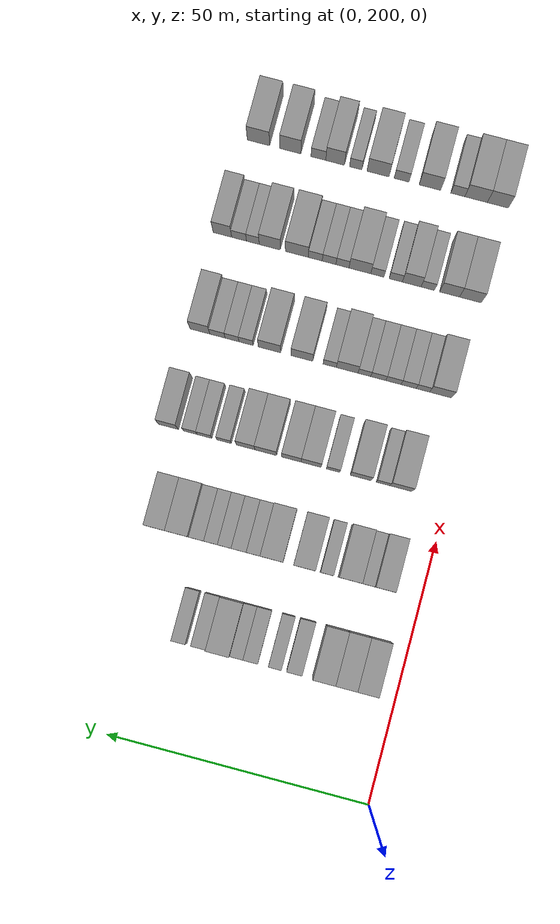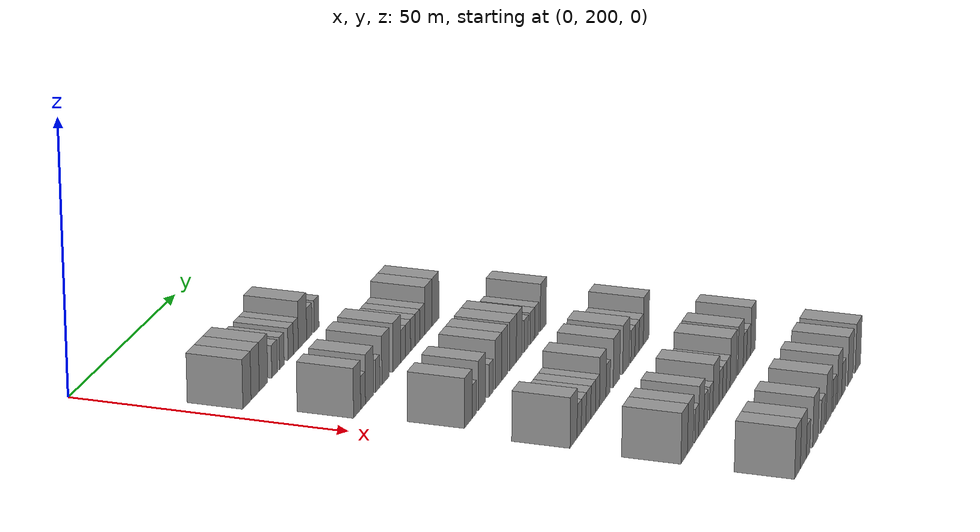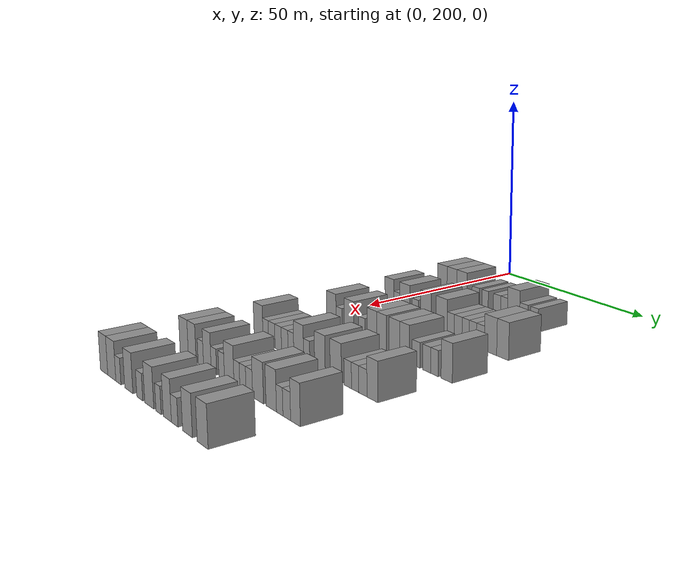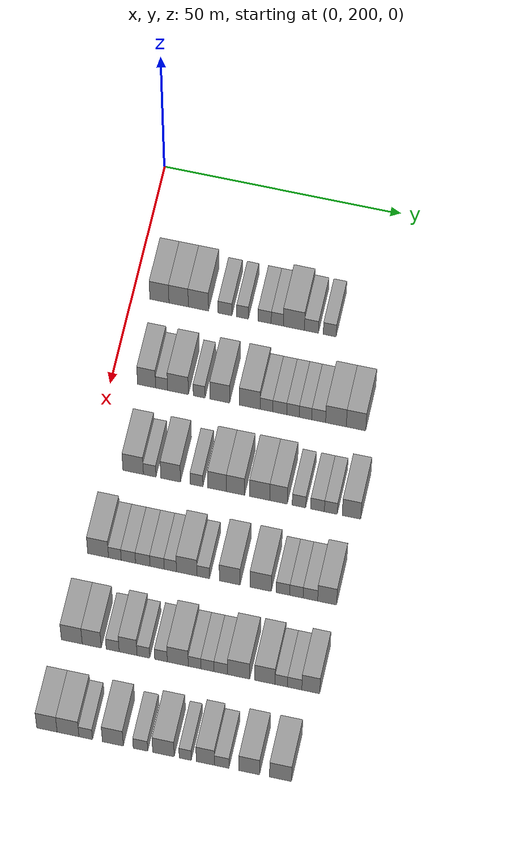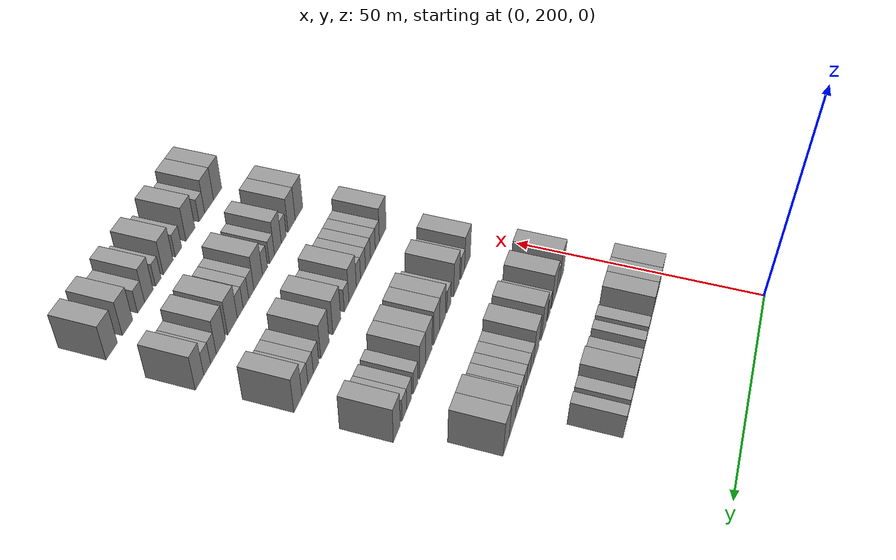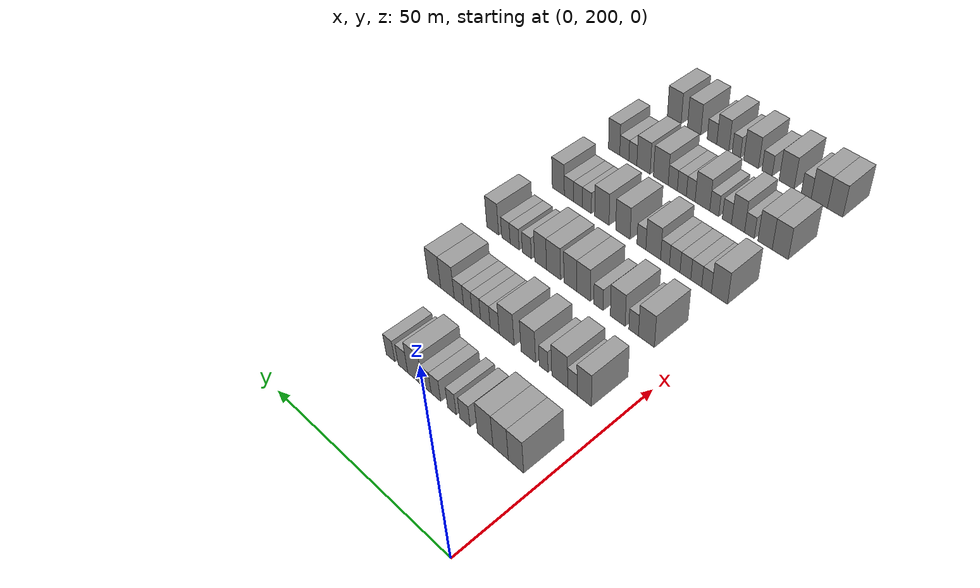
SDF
<sdf version="1.6">
 <world name="default">
  <model name="building_135">
   <static>1</static>
   <pose>25.0000 205.6611 0 0.000000 0.000000 0.000000</pose>
   <link name="link">
    <pose>0 0 4.50 0 0 0</pose>
    <collision name="collision"><geometry><box><size>10.0000 4.0067 9.0000</size></box></geometry></collision>
    <visual name="visual">
     <cast_shadows>0</cast_shadows>
     <geometry><box><size>10.0000 4.0067 9.0000</size></box></geometry>
     <material>
      <script>
       <uri>model://grey_wall/materials/scripts</uri>
       <uri>model://grey_wall/materials/textures</uri>
       <name>vrc/grey_wall</name>
      </script>
     </material>
    </visual>
   </link>
  </model>
  <model name="building_136">
   <static>1</static>
   <pose>25.0000 209.7073 0 0.000000 0.000000 0.000000</pose>
   <link name="link">
    <pose>0 0 4.50 0 0 0</pose>
    <collision name="collision"><geometry><box><size>10.0000 4.0858 9.0000</size></box></geometry></collision>
    <visual name="visual">
     <cast_shadows>0</cast_shadows>
     <geometry><box><size>10.0000 4.0858 9.0000</size></box></geometry>
     <material>
      <script>
       <uri>model://grey_wall/materials/scripts</uri>
       <uri>model://grey_wall/materials/textures</uri>
       <name>vrc/grey_wall</name>
      </script>
     </material>
    </visual>
   </link>
  </model>
  <model name="building_137">
   <static>1</static>
   <pose>25.0000 213.8695 0 0.000000 0.000000 0.000000</pose>
   <link name="link">
    <pose>0 0 4.50 0 0 0</pose>
    <collision name="collision"><geometry><box><size>10.0000 4.2385 9.0000</size></box></geometry></collision>
    <visual name="visual">
     <cast_shadows>0</cast_shadows>
     <geometry><box><size>10.0000 4.2385 9.0000</size></box></geometry>
     <material>
      <script>
       <uri>model://grey_wall/materials/scripts</uri>
       <uri>model://grey_wall/materials/textures</uri>
       <name>vrc/grey_wall</name>
      </script>
     </material>
    </visual>
   </link>
  </model>
  <model name="building_138">
   <static>1</static>
   <pose>25.0000 219.4439 0 0.000000 0.000000 0.000000</pose>
   <link name="link">
    <pose>0 0 3.00 0 0 0</pose>
    <collision name="collision"><geometry><box><size>10.0000 2.9102 6.0000</size></box></geometry></collision>
    <visual name="visual">
     <cast_shadows>0</cast_shadows>
     <geometry><box><size>10.0000 2.9102 6.0000</size></box></geometry>
     <material>
      <script>
       <uri>model://grey_wall/materials/scripts</uri>
       <uri>model://grey_wall/materials/textures</uri>
       <name>vrc/grey_wall</name>
      </script>
     </material>
    </visual>
   </link>
  </model>
  <model name="building_139">
   <static>1</static>
   <pose>25.0000 223.1220 0 0.000000 0.000000 0.000000</pose>
   <link name="link">
    <pose>0 0 3.00 0 0 0</pose>
    <collision name="collision"><geometry><box><size>10.0000 2.4459 6.0000</size></box></geometry></collision>
    <visual name="visual">
     <cast_shadows>0</cast_shadows>
     <geometry><box><size>10.0000 2.4459 6.0000</size></box></geometry>
     <material>
      <script>
       <uri>model://grey_wall/materials/scripts</uri>
       <uri>model://grey_wall/materials/textures</uri>
       <name>vrc/grey_wall</name>
      </script>
     </material>
    </visual>
   </link>
  </model>
  <model name="building_140">
   <static>1</static>
   <pose>25.0000 227.7401 0 0.000000 0.000000 0.000000</pose>
   <link name="link">
    <pose>0 0 3.00 0 0 0</pose>
    <collision name="collision"><geometry><box><size>10.0000 2.7903 6.0000</size></box></geometry></collision>
    <visual name="visual">
     <cast_shadows>0</cast_shadows>
     <geometry><box><size>10.0000 2.7903 6.0000</size></box></geometry>
     <material>
      <script>
       <uri>model://grey_wall/materials/scripts</uri>
       <uri>model://grey_wall/materials/textures</uri>
       <name>vrc/grey_wall</name>
      </script>
     </material>
    </visual>
   </link>
  </model>
  <model name="building_141">
   <static>1</static>
   <pose>25.0000 230.3932 0 0.000000 0.000000 0.000000</pose>
   <link name="link">
    <pose>0 0 3.00 0 0 0</pose>
    <collision name="collision"><geometry><box><size>10.0000 2.5159 6.0000</size></box></geometry></collision>
    <visual name="visual">
     <cast_shadows>0</cast_shadows>
     <geometry><box><size>10.0000 2.5159 6.0000</size></box></geometry>
     <material>
      <script>
       <uri>model://grey_wall/materials/scripts</uri>
       <uri>model://grey_wall/materials/textures</uri>
       <name>vrc/grey_wall</name>
      </script>
     </material>
    </visual>
   </link>
  </model>
  <model name="building_142">
   <static>1</static>
   <pose>25.0000 233.8676 0 0.000000 0.000000 0.000000</pose>
   <link name="link">
    <pose>0 0 4.50 0 0 0</pose>
    <collision name="collision"><geometry><box><size>10.0000 4.4328 9.0000</size></box></geometry></collision>
    <visual name="visual">
     <cast_shadows>0</cast_shadows>
     <geometry><box><size>10.0000 4.4328 9.0000</size></box></geometry>
     <material>
      <script>
       <uri>model://grey_wall/materials/scripts</uri>
       <uri>model://grey_wall/materials/textures</uri>
       <name>vrc/grey_wall</name>
      </script>
     </material>
    </visual>
   </link>
  </model>
  <model name="building_143">
   <static>1</static>
   <pose>25.0000 237.5446 0 0.000000 0.000000 0.000000</pose>
   <link name="link">
    <pose>0 0 3.00 0 0 0</pose>
    <collision name="collision"><geometry><box><size>10.0000 2.9213 6.0000</size></box></geometry></collision>
    <visual name="visual">
     <cast_shadows>0</cast_shadows>
     <geometry><box><size>10.0000 2.9213 6.0000</size></box></geometry>
     <material>
      <script>
       <uri>model://grey_wall/materials/scripts</uri>
       <uri>model://grey_wall/materials/textures</uri>
       <name>vrc/grey_wall</name>
      </script>
     </material>
    </visual>
   </link>
  </model>
  <model name="building_144">
   <static>1</static>
   <pose>25.0000 241.3592 0 0.000000 0.000000 0.000000</pose>
   <link name="link">
    <pose>0 0 3.00 0 0 0</pose>
    <collision name="collision"><geometry><box><size>10.0000 2.7078 6.0000</size></box></geometry></collision>
    <visual name="visual">
     <cast_shadows>0</cast_shadows>
     <geometry><box><size>10.0000 2.7078 6.0000</size></box></geometry>
     <material>
      <script>
       <uri>model://grey_wall/materials/scripts</uri>
       <uri>model://grey_wall/materials/textures</uri>
       <name>vrc/grey_wall</name>
      </script>
     </material>
    </visual>
   </link>
  </model>
  <model name="building_305">
   <static>1</static>
   <pose>44.0000 207.3473 0 0.000000 0.000000 0.000000</pose>
   <link name="link">
    <pose>0 0 4.50 0 0 0</pose>
    <collision name="collision"><geometry><box><size>10.0000 3.7754 9.0000</size></box></geometry></collision>
    <visual name="visual">
     <cast_shadows>0</cast_shadows>
     <geometry><box><size>10.0000 3.7754 9.0000</size></box></geometry>
     <material>
      <script>
       <uri>model://grey_wall/materials/scripts</uri>
       <uri>model://grey_wall/materials/textures</uri>
       <name>vrc/grey_wall</name>
      </script>
     </material>
    </visual>
   </link>
  </model>
  <model name="building_306">
   <static>1</static>
   <pose>44.0000 210.4851 0 0.000000 0.000000 0.000000</pose>
   <link name="link">
    <pose>0 0 3.00 0 0 0</pose>
    <collision name="collision"><geometry><box><size>10.0000 2.5001 6.0000</size></box></geometry></collision>
    <visual name="visual">
     <cast_shadows>0</cast_shadows>
     <geometry><box><size>10.0000 2.5001 6.0000</size></box></geometry>
     <material>
      <script>
       <uri>model://grey_wall/materials/scripts</uri>
       <uri>model://grey_wall/materials/textures</uri>
       <name>vrc/grey_wall</name>
      </script>
     </material>
    </visual>
   </link>
  </model>
  <model name="building_307">
   <static>1</static>
   <pose>44.0000 213.9027 0 0.000000 0.000000 0.000000</pose>
   <link name="link">
    <pose>0 0 4.50 0 0 0</pose>
    <collision name="collision"><geometry><box><size>10.0000 4.3350 9.0000</size></box></geometry></collision>
    <visual name="visual">
     <cast_shadows>0</cast_shadows>
     <geometry><box><size>10.0000 4.3350 9.0000</size></box></geometry>
     <material>
      <script>
       <uri>model://grey_wall/materials/scripts</uri>
       <uri>model://grey_wall/materials/textures</uri>
       <name>vrc/grey_wall</name>
      </script>
     </material>
    </visual>
   </link>
  </model>
  <model name="building_308">
   <static>1</static>
   <pose>44.0000 218.3056 0 0.000000 0.000000 0.000000</pose>
   <link name="link">
    <pose>0 0 3.00 0 0 0</pose>
    <collision name="collision"><geometry><box><size>10.0000 2.4708 6.0000</size></box></geometry></collision>
    <visual name="visual">
     <cast_shadows>0</cast_shadows>
     <geometry><box><size>10.0000 2.4708 6.0000</size></box></geometry>
     <material>
      <script>
       <uri>model://grey_wall/materials/scripts</uri>
       <uri>model://grey_wall/materials/textures</uri>
       <name>vrc/grey_wall</name>
      </script>
     </material>
    </visual>
   </link>
  </model>
  <model name="building_309">
   <static>1</static>
   <pose>44.0000 222.5954 0 0.000000 0.000000 0.000000</pose>
   <link name="link">
    <pose>0 0 4.50 0 0 0</pose>
    <collision name="collision"><geometry><box><size>10.0000 4.1089 9.0000</size></box></geometry></collision>
    <visual name="visual">
     <cast_shadows>0</cast_shadows>
     <geometry><box><size>10.0000 4.1089 9.0000</size></box></geometry>
     <material>
      <script>
       <uri>model://grey_wall/materials/scripts</uri>
       <uri>model://grey_wall/materials/textures</uri>
       <name>vrc/grey_wall</name>
      </script>
     </material>
    </visual>
   </link>
  </model>
  <model name="building_310">
   <static>1</static>
   <pose>44.0000 228.8108 0 0.000000 0.000000 0.000000</pose>
   <link name="link">
    <pose>0 0 4.50 0 0 0</pose>
    <collision name="collision"><geometry><box><size>10.0000 4.3220 9.0000</size></box></geometry></collision>
    <visual name="visual">
     <cast_shadows>0</cast_shadows>
     <geometry><box><size>10.0000 4.3220 9.0000</size></box></geometry>
     <material>
      <script>
       <uri>model://grey_wall/materials/scripts</uri>
       <uri>model://grey_wall/materials/textures</uri>
       <name>vrc/grey_wall</name>
      </script>
     </material>
    </visual>
   </link>
  </model>
  <model name="building_311">
   <static>1</static>
   <pose>44.0000 232.3032 0 0.000000 0.000000 0.000000</pose>
   <link name="link">
    <pose>0 0 3.00 0 0 0</pose>
    <collision name="collision"><geometry><box><size>10.0000 2.6628 6.0000</size></box></geometry></collision>
    <visual name="visual">
     <cast_shadows>0</cast_shadows>
     <geometry><box><size>10.0000 2.6628 6.0000</size></box></geometry>
     <material>
      <script>
       <uri>model://grey_wall/materials/scripts</uri>
       <uri>model://grey_wall/materials/textures</uri>
       <name>vrc/grey_wall</name>
      </script>
     </material>
    </visual>
   </link>
  </model>
  <model name="building_312">
   <static>1</static>
   <pose>44.0000 235.0671 0 0.000000 0.000000 0.000000</pose>
   <link name="link">
    <pose>0 0 3.00 0 0 0</pose>
    <collision name="collision"><geometry><box><size>10.0000 2.8650 6.0000</size></box></geometry></collision>
    <visual name="visual">
     <cast_shadows>0</cast_shadows>
     <geometry><box><size>10.0000 2.8650 6.0000</size></box></geometry>
     <material>
      <script>
       <uri>model://grey_wall/materials/scripts</uri>
       <uri>model://grey_wall/materials/textures</uri>
       <name>vrc/grey_wall</name>
      </script>
     </material>
    </visual>
   </link>
  </model>
  <model name="building_313">
   <static>1</static>
   <pose>44.0000 237.7959 0 0.000000 0.000000 0.000000</pose>
   <link name="link">
    <pose>0 0 3.00 0 0 0</pose>
    <collision name="collision"><geometry><box><size>10.0000 2.5925 6.0000</size></box></geometry></collision>
    <visual name="visual">
     <cast_shadows>0</cast_shadows>
     <geometry><box><size>10.0000 2.5925 6.0000</size></box></geometry>
     <material>
      <script>
       <uri>model://grey_wall/materials/scripts</uri>
       <uri>model://grey_wall/materials/textures</uri>
       <name>vrc/grey_wall</name>
      </script>
     </material>
    </visual>
   </link>
  </model>
  <model name="building_314">
   <static>1</static>
   <pose>44.0000 240.3921 0 0.000000 0.000000 0.000000</pose>
   <link name="link">
    <pose>0 0 3.00 0 0 0</pose>
    <collision name="collision"><geometry><box><size>10.0000 2.5998 6.0000</size></box></geometry></collision>
    <visual name="visual">
     <cast_shadows>0</cast_shadows>
     <geometry><box><size>10.0000 2.5998 6.0000</size></box></geometry>
     <material>
      <script>
       <uri>model://grey_wall/materials/scripts</uri>
       <uri>model://grey_wall/materials/textures</uri>
       <name>vrc/grey_wall</name>
      </script>
     </material>
    </visual>
   </link>
  </model>
  <model name="building_315">
   <static>1</static>
   <pose>44.0000 243.1312 0 0.000000 0.000000 0.000000</pose>
   <link name="link">
    <pose>0 0 3.00 0 0 0</pose>
    <collision name="collision"><geometry><box><size>10.0000 2.8784 6.0000</size></box></geometry></collision>
    <visual name="visual">
     <cast_shadows>0</cast_shadows>
     <geometry><box><size>10.0000 2.8784 6.0000</size></box></geometry>
     <material>
      <script>
       <uri>model://grey_wall/materials/scripts</uri>
       <uri>model://grey_wall/materials/textures</uri>
       <name>vrc/grey_wall</name>
      </script>
     </material>
    </visual>
   </link>
  </model>
  <model name="building_316">
   <static>1</static>
   <pose>44.0000 246.7166 0 0.000000 0.000000 0.000000</pose>
   <link name="link">
    <pose>0 0 4.50 0 0 0</pose>
    <collision name="collision"><geometry><box><size>10.0000 4.2925 9.0000</size></box></geometry></collision>
    <visual name="visual">
     <cast_shadows>0</cast_shadows>
     <geometry><box><size>10.0000 4.2925 9.0000</size></box></geometry>
     <material>
      <script>
       <uri>model://grey_wall/materials/scripts</uri>
       <uri>model://grey_wall/materials/textures</uri>
       <name>vrc/grey_wall</name>
      </script>
     </material>
    </visual>
   </link>
  </model>
  <model name="building_317">
   <static>1</static>
   <pose>44.0000 250.8756 0 0.000000 0.000000 0.000000</pose>
   <link name="link">
    <pose>0 0 4.50 0 0 0</pose>
    <collision name="collision"><geometry><box><size>10.0000 4.0255 9.0000</size></box></geometry></collision>
    <visual name="visual">
     <cast_shadows>0</cast_shadows>
     <geometry><box><size>10.0000 4.0255 9.0000</size></box></geometry>
     <material>
      <script>
       <uri>model://grey_wall/materials/scripts</uri>
       <uri>model://grey_wall/materials/textures</uri>
       <name>vrc/grey_wall</name>
      </script>
     </material>
    </visual>
   </link>
  </model>
  <model name="building_482">
   <static>1</static>
   <pose>63.0000 208.9301 0 0.000000 0.000000 0.000000</pose>
   <link name="link">
    <pose>0 0 4.50 0 0 0</pose>
    <collision name="collision"><geometry><box><size>10.0000 4.2468 9.0000</size></box></geometry></collision>
    <visual name="visual">
     <cast_shadows>0</cast_shadows>
     <geometry><box><size>10.0000 4.2468 9.0000</size></box></geometry>
     <material>
      <script>
       <uri>model://grey_wall/materials/scripts</uri>
       <uri>model://grey_wall/materials/textures</uri>
       <name>vrc/grey_wall</name>
      </script>
     </material>
    </visual>
   </link>
  </model>
  <model name="building_483">
   <static>1</static>
   <pose>63.0000 212.3550 0 0.000000 0.000000 0.000000</pose>
   <link name="link">
    <pose>0 0 3.00 0 0 0</pose>
    <collision name="collision"><geometry><box><size>10.0000 2.6031 6.0000</size></box></geometry></collision>
    <visual name="visual">
     <cast_shadows>0</cast_shadows>
     <geometry><box><size>10.0000 2.6031 6.0000</size></box></geometry>
     <material>
      <script>
       <uri>model://grey_wall/materials/scripts</uri>
       <uri>model://grey_wall/materials/textures</uri>
       <name>vrc/grey_wall</name>
      </script>
     </material>
    </visual>
   </link>
  </model>
  <model name="building_484">
   <static>1</static>
   <pose>63.0000 216.6936 0 0.000000 0.000000 0.000000</pose>
   <link name="link">
    <pose>0 0 4.50 0 0 0</pose>
    <collision name="collision"><geometry><box><size>10.0000 4.0740 9.0000</size></box></geometry></collision>
    <visual name="visual">
     <cast_shadows>0</cast_shadows>
     <geometry><box><size>10.0000 4.0740 9.0000</size></box></geometry>
     <material>
      <script>
       <uri>model://grey_wall/materials/scripts</uri>
       <uri>model://grey_wall/materials/textures</uri>
       <name>vrc/grey_wall</name>
      </script>
     </material>
    </visual>
   </link>
  </model>
  <model name="building_485">
   <static>1</static>
   <pose>63.0000 222.0425 0 0.000000 0.000000 0.000000</pose>
   <link name="link">
    <pose>0 0 3.00 0 0 0</pose>
    <collision name="collision"><geometry><box><size>10.0000 2.6239 6.0000</size></box></geometry></collision>
    <visual name="visual">
     <cast_shadows>0</cast_shadows>
     <geometry><box><size>10.0000 2.6239 6.0000</size></box></geometry>
     <material>
      <script>
       <uri>model://grey_wall/materials/scripts</uri>
       <uri>model://grey_wall/materials/textures</uri>
       <name>vrc/grey_wall</name>
      </script>
     </material>
    </visual>
   </link>
  </model>
  <model name="building_486">
   <static>1</static>
   <pose>63.0000 226.2851 0 0.000000 0.000000 0.000000</pose>
   <link name="link">
    <pose>0 0 4.50 0 0 0</pose>
    <collision name="collision"><geometry><box><size>10.0000 3.8613 9.0000</size></box></geometry></collision>
    <visual name="visual">
     <cast_shadows>0</cast_shadows>
     <geometry><box><size>10.0000 3.8613 9.0000</size></box></geometry>
     <material>
      <script>
       <uri>model://grey_wall/materials/scripts</uri>
       <uri>model://grey_wall/materials/textures</uri>
       <name>vrc/grey_wall</name>
      </script>
     </material>
    </visual>
   </link>
  </model>
  <model name="building_487">
   <static>1</static>
   <pose>63.0000 230.1006 0 0.000000 0.000000 0.000000</pose>
   <link name="link">
    <pose>0 0 4.50 0 0 0</pose>
    <collision name="collision"><geometry><box><size>10.0000 3.7696 9.0000</size></box></geometry></collision>
    <visual name="visual">
     <cast_shadows>0</cast_shadows>
     <geometry><box><size>10.0000 3.7696 9.0000</size></box></geometry>
     <material>
      <script>
       <uri>model://grey_wall/materials/scripts</uri>
       <uri>model://grey_wall/materials/textures</uri>
       <name>vrc/grey_wall</name>
      </script>
     </material>
    </visual>
   </link>
  </model>
  <model name="building_488">
   <static>1</static>
   <pose>63.0000 235.0757 0 0.000000 0.000000 0.000000</pose>
   <link name="link">
    <pose>0 0 4.50 0 0 0</pose>
    <collision name="collision"><geometry><box><size>10.0000 4.1807 9.0000</size></box></geometry></collision>
    <visual name="visual">
     <cast_shadows>0</cast_shadows>
     <geometry><box><size>10.0000 4.1807 9.0000</size></box></geometry>
     <material>
      <script>
       <uri>model://grey_wall/materials/scripts</uri>
       <uri>model://grey_wall/materials/textures</uri>
       <name>vrc/grey_wall</name>
      </script>
     </material>
    </visual>
   </link>
  </model>
  <model name="building_489">
   <static>1</static>
   <pose>63.0000 238.9694 0 0.000000 0.000000 0.000000</pose>
   <link name="link">
    <pose>0 0 4.50 0 0 0</pose>
    <collision name="collision"><geometry><box><size>10.0000 3.6067 9.0000</size></box></geometry></collision>
    <visual name="visual">
     <cast_shadows>0</cast_shadows>
     <geometry><box><size>10.0000 3.6067 9.0000</size></box></geometry>
     <material>
      <script>
       <uri>model://grey_wall/materials/scripts</uri>
       <uri>model://grey_wall/materials/textures</uri>
       <name>vrc/grey_wall</name>
      </script>
     </material>
    </visual>
   </link>
  </model>
  <model name="building_490">
   <static>1</static>
   <pose>63.0000 243.1659 0 0.000000 0.000000 0.000000</pose>
   <link name="link">
    <pose>0 0 3.00 0 0 0</pose>
    <collision name="collision"><geometry><box><size>10.0000 2.7863 6.0000</size></box></geometry></collision>
    <visual name="visual">
     <cast_shadows>0</cast_shadows>
     <geometry><box><size>10.0000 2.7863 6.0000</size></box></geometry>
     <material>
      <script>
       <uri>model://grey_wall/materials/scripts</uri>
       <uri>model://grey_wall/materials/textures</uri>
       <name>vrc/grey_wall</name>
      </script>
     </material>
    </visual>
   </link>
  </model>
  <model name="building_491">
   <static>1</static>
   <pose>63.0000 246.9793 0 0.000000 0.000000 0.000000</pose>
   <link name="link">
    <pose>0 0 3.00 0 0 0</pose>
    <collision name="collision"><geometry><box><size>10.0000 2.8406 6.0000</size></box></geometry></collision>
    <visual name="visual">
     <cast_shadows>0</cast_shadows>
     <geometry><box><size>10.0000 2.8406 6.0000</size></box></geometry>
     <material>
      <script>
       <uri>model://grey_wall/materials/scripts</uri>
       <uri>model://grey_wall/materials/textures</uri>
       <name>vrc/grey_wall</name>
      </script>
     </material>
    </visual>
   </link>
  </model>
  <model name="building_492">
   <static>1</static>
   <pose>63.0000 249.7275 0 0.000000 0.000000 0.000000</pose>
   <link name="link">
    <pose>0 0 3.00 0 0 0</pose>
    <collision name="collision"><geometry><box><size>10.0000 2.6557 6.0000</size></box></geometry></collision>
    <visual name="visual">
     <cast_shadows>0</cast_shadows>
     <geometry><box><size>10.0000 2.6557 6.0000</size></box></geometry>
     <material>
      <script>
       <uri>model://grey_wall/materials/scripts</uri>
       <uri>model://grey_wall/materials/textures</uri>
       <name>vrc/grey_wall</name>
      </script>
     </material>
    </visual>
   </link>
  </model>
  <model name="building_493">
   <static>1</static>
   <pose>63.0000 253.9618 0 0.000000 0.000000 0.000000</pose>
   <link name="link">
    <pose>0 0 4.50 0 0 0</pose>
    <collision name="collision"><geometry><box><size>10.0000 3.8131 9.0000</size></box></geometry></collision>
    <visual name="visual">
     <cast_shadows>0</cast_shadows>
     <geometry><box><size>10.0000 3.8131 9.0000</size></box></geometry>
     <material>
      <script>
       <uri>model://grey_wall/materials/scripts</uri>
       <uri>model://grey_wall/materials/textures</uri>
       <name>vrc/grey_wall</name>
      </script>
     </material>
    </visual>
   </link>
  </model>
  <model name="building_666">
   <static>1</static>
   <pose>82.0000 206.1211 0 0.000000 0.000000 0.000000</pose>
   <link name="link">
    <pose>0 0 4.50 0 0 0</pose>
    <collision name="collision"><geometry><box><size>10.0000 4.2768 9.0000</size></box></geometry></collision>
    <visual name="visual">
     <cast_shadows>0</cast_shadows>
     <geometry><box><size>10.0000 4.2768 9.0000</size></box></geometry>
     <material>
      <script>
       <uri>model://grey_wall/materials/scripts</uri>
       <uri>model://grey_wall/materials/textures</uri>
       <name>vrc/grey_wall</name>
      </script>
     </material>
    </visual>
   </link>
  </model>
  <model name="building_667">
   <static>1</static>
   <pose>82.0000 209.5627 0 0.000000 0.000000 0.000000</pose>
   <link name="link">
    <pose>0 0 3.00 0 0 0</pose>
    <collision name="collision"><geometry><box><size>10.0000 2.6064 6.0000</size></box></geometry></collision>
    <visual name="visual">
     <cast_shadows>0</cast_shadows>
     <geometry><box><size>10.0000 2.6064 6.0000</size></box></geometry>
     <material>
      <script>
       <uri>model://grey_wall/materials/scripts</uri>
       <uri>model://grey_wall/materials/textures</uri>
       <name>vrc/grey_wall</name>
      </script>
     </material>
    </visual>
   </link>
  </model>
  <model name="building_668">
   <static>1</static>
   <pose>82.0000 212.3404 0 0.000000 0.000000 0.000000</pose>
   <link name="link">
    <pose>0 0 3.00 0 0 0</pose>
    <collision name="collision"><geometry><box><size>10.0000 2.9490 6.0000</size></box></geometry></collision>
    <visual name="visual">
     <cast_shadows>0</cast_shadows>
     <geometry><box><size>10.0000 2.9490 6.0000</size></box></geometry>
     <material>
      <script>
       <uri>model://grey_wall/materials/scripts</uri>
       <uri>model://grey_wall/materials/textures</uri>
       <name>vrc/grey_wall</name>
      </script>
     </material>
    </visual>
   </link>
  </model>
  <model name="building_669">
   <static>1</static>
   <pose>82.0000 215.2959 0 0.000000 0.000000 0.000000</pose>
   <link name="link">
    <pose>0 0 3.00 0 0 0</pose>
    <collision name="collision"><geometry><box><size>10.0000 2.9620 6.0000</size></box></geometry></collision>
    <visual name="visual">
     <cast_shadows>0</cast_shadows>
     <geometry><box><size>10.0000 2.9620 6.0000</size></box></geometry>
     <material>
      <script>
       <uri>model://grey_wall/materials/scripts</uri>
       <uri>model://grey_wall/materials/textures</uri>
       <name>vrc/grey_wall</name>
      </script>
     </material>
    </visual>
   </link>
  </model>
  <model name="building_670">
   <static>1</static>
   <pose>82.0000 218.2406 0 0.000000 0.000000 0.000000</pose>
   <link name="link">
    <pose>0 0 3.00 0 0 0</pose>
    <collision name="collision"><geometry><box><size>10.0000 2.9273 6.0000</size></box></geometry></collision>
    <visual name="visual">
     <cast_shadows>0</cast_shadows>
     <geometry><box><size>10.0000 2.9273 6.0000</size></box></geometry>
     <material>
      <script>
       <uri>model://grey_wall/materials/scripts</uri>
       <uri>model://grey_wall/materials/textures</uri>
       <name>vrc/grey_wall</name>
      </script>
     </material>
    </visual>
   </link>
  </model>
  <model name="building_671">
   <static>1</static>
   <pose>82.0000 220.9592 0 0.000000 0.000000 0.000000</pose>
   <link name="link">
    <pose>0 0 3.00 0 0 0</pose>
    <collision name="collision"><geometry><box><size>10.0000 2.5099 6.0000</size></box></geometry></collision>
    <visual name="visual">
     <cast_shadows>0</cast_shadows>
     <geometry><box><size>10.0000 2.5099 6.0000</size></box></geometry>
     <material>
      <script>
       <uri>model://grey_wall/materials/scripts</uri>
       <uri>model://grey_wall/materials/textures</uri>
       <name>vrc/grey_wall</name>
      </script>
     </material>
    </visual>
   </link>
  </model>
  <model name="building_672">
   <static>1</static>
   <pose>82.0000 224.3136 0 0.000000 0.000000 0.000000</pose>
   <link name="link">
    <pose>0 0 4.50 0 0 0</pose>
    <collision name="collision"><geometry><box><size>10.0000 4.1989 9.0000</size></box></geometry></collision>
    <visual name="visual">
     <cast_shadows>0</cast_shadows>
     <geometry><box><size>10.0000 4.1989 9.0000</size></box></geometry>
     <material>
      <script>
       <uri>model://grey_wall/materials/scripts</uri>
       <uri>model://grey_wall/materials/textures</uri>
       <name>vrc/grey_wall</name>
      </script>
     </material>
    </visual>
   </link>
  </model>
  <model name="building_673">
   <static>1</static>
   <pose>82.0000 227.7098 0 0.000000 0.000000 0.000000</pose>
   <link name="link">
    <pose>0 0 3.00 0 0 0</pose>
    <collision name="collision"><geometry><box><size>10.0000 2.5934 6.0000</size></box></geometry></collision>
    <visual name="visual">
     <cast_shadows>0</cast_shadows>
     <geometry><box><size>10.0000 2.5934 6.0000</size></box></geometry>
     <material>
      <script>
       <uri>model://grey_wall/materials/scripts</uri>
       <uri>model://grey_wall/materials/textures</uri>
       <name>vrc/grey_wall</name>
      </script>
     </material>
    </visual>
   </link>
  </model>
  <model name="building_674">
   <static>1</static>
   <pose>82.0000 233.1360 0 0.000000 0.000000 0.000000</pose>
   <link name="link">
    <pose>0 0 4.50 0 0 0</pose>
    <collision name="collision"><geometry><box><size>10.0000 4.2591 9.0000</size></box></geometry></collision>
    <visual name="visual">
     <cast_shadows>0</cast_shadows>
     <geometry><box><size>10.0000 4.2591 9.0000</size></box></geometry>
     <material>
      <script>
       <uri>model://grey_wall/materials/scripts</uri>
       <uri>model://grey_wall/materials/textures</uri>
       <name>vrc/grey_wall</name>
      </script>
     </material>
    </visual>
   </link>
  </model>
  <model name="building_675">
   <static>1</static>
   <pose>82.0000 239.4495 0 0.000000 0.000000 0.000000</pose>
   <link name="link">
    <pose>0 0 4.50 0 0 0</pose>
    <collision name="collision"><geometry><box><size>10.0000 4.3679 9.0000</size></box></geometry></collision>
    <visual name="visual">
     <cast_shadows>0</cast_shadows>
     <geometry><box><size>10.0000 4.3679 9.0000</size></box></geometry>
     <material>
      <script>
       <uri>model://grey_wall/materials/scripts</uri>
       <uri>model://grey_wall/materials/textures</uri>
       <name>vrc/grey_wall</name>
      </script>
     </material>
    </visual>
   </link>
  </model>
  <model name="building_676">
   <static>1</static>
   <pose>82.0000 244.0221 0 0.000000 0.000000 0.000000</pose>
   <link name="link">
    <pose>0 0 3.00 0 0 0</pose>
    <collision name="collision"><geometry><box><size>10.0000 2.7771 6.0000</size></box></geometry></collision>
    <visual name="visual">
     <cast_shadows>0</cast_shadows>
     <geometry><box><size>10.0000 2.7771 6.0000</size></box></geometry>
     <material>
      <script>
       <uri>model://grey_wall/materials/scripts</uri>
       <uri>model://grey_wall/materials/textures</uri>
       <name>vrc/grey_wall</name>
      </script>
     </material>
    </visual>
   </link>
  </model>
  <model name="building_677">
   <static>1</static>
   <pose>82.0000 246.7639 0 0.000000 0.000000 0.000000</pose>
   <link name="link">
    <pose>0 0 3.00 0 0 0</pose>
    <collision name="collision"><geometry><box><size>10.0000 2.7065 6.0000</size></box></geometry></collision>
    <visual name="visual">
     <cast_shadows>0</cast_shadows>
     <geometry><box><size>10.0000 2.7065 6.0000</size></box></geometry>
     <material>
      <script>
       <uri>model://grey_wall/materials/scripts</uri>
       <uri>model://grey_wall/materials/textures</uri>
       <name>vrc/grey_wall</name>
      </script>
     </material>
    </visual>
   </link>
  </model>
  <model name="building_678">
   <static>1</static>
   <pose>82.0000 249.6074 0 0.000000 0.000000 0.000000</pose>
   <link name="link">
    <pose>0 0 3.00 0 0 0</pose>
    <collision name="collision"><geometry><box><size>10.0000 2.9806 6.0000</size></box></geometry></collision>
    <visual name="visual">
     <cast_shadows>0</cast_shadows>
     <geometry><box><size>10.0000 2.9806 6.0000</size></box></geometry>
     <material>
      <script>
       <uri>model://grey_wall/materials/scripts</uri>
       <uri>model://grey_wall/materials/textures</uri>
       <name>vrc/grey_wall</name>
      </script>
     </material>
    </visual>
   </link>
  </model>
  <model name="building_679">
   <static>1</static>
   <pose>82.0000 253.0312 0 0.000000 0.000000 0.000000</pose>
   <link name="link">
    <pose>0 0 4.50 0 0 0</pose>
    <collision name="collision"><geometry><box><size>10.0000 3.8669 9.0000</size></box></geometry></collision>
    <visual name="visual">
     <cast_shadows>0</cast_shadows>
     <geometry><box><size>10.0000 3.8669 9.0000</size></box></geometry>
     <material>
      <script>
       <uri>model://grey_wall/materials/scripts</uri>
       <uri>model://grey_wall/materials/textures</uri>
       <name>vrc/grey_wall</name>
      </script>
     </material>
    </visual>
   </link>
  </model>
  <model name="building_843">
   <static>1</static>
   <pose>101.0000 205.1934 0 0.000000 0.000000 0.000000</pose>
   <link name="link">
    <pose>0 0 4.50 0 0 0</pose>
    <collision name="collision"><geometry><box><size>10.0000 4.2603 9.0000</size></box></geometry></collision>
    <visual name="visual">
     <cast_shadows>0</cast_shadows>
     <geometry><box><size>10.0000 4.2603 9.0000</size></box></geometry>
     <material>
      <script>
       <uri>model://grey_wall/materials/scripts</uri>
       <uri>model://grey_wall/materials/textures</uri>
       <name>vrc/grey_wall</name>
      </script>
     </material>
    </visual>
   </link>
  </model>
  <model name="building_844">
   <static>1</static>
   <pose>101.0000 209.2634 0 0.000000 0.000000 0.000000</pose>
   <link name="link">
    <pose>0 0 4.50 0 0 0</pose>
    <collision name="collision"><geometry><box><size>10.0000 3.8798 9.0000</size></box></geometry></collision>
    <visual name="visual">
     <cast_shadows>0</cast_shadows>
     <geometry><box><size>10.0000 3.8798 9.0000</size></box></geometry>
     <material>
      <script>
       <uri>model://grey_wall/materials/scripts</uri>
       <uri>model://grey_wall/materials/textures</uri>
       <name>vrc/grey_wall</name>
      </script>
     </material>
    </visual>
   </link>
  </model>
  <model name="building_845">
   <static>1</static>
   <pose>101.0000 213.5293 0 0.000000 0.000000 0.000000</pose>
   <link name="link">
    <pose>0 0 3.00 0 0 0</pose>
    <collision name="collision"><geometry><box><size>10.0000 2.6518 6.0000</size></box></geometry></collision>
    <visual name="visual">
     <cast_shadows>0</cast_shadows>
     <geometry><box><size>10.0000 2.6518 6.0000</size></box></geometry>
     <material>
      <script>
       <uri>model://grey_wall/materials/scripts</uri>
       <uri>model://grey_wall/materials/textures</uri>
       <name>vrc/grey_wall</name>
      </script>
     </material>
    </visual>
   </link>
  </model>
  <model name="building_846">
   <static>1</static>
   <pose>101.0000 216.6802 0 0.000000 0.000000 0.000000</pose>
   <link name="link">
    <pose>0 0 4.50 0 0 0</pose>
    <collision name="collision"><geometry><box><size>10.0000 3.6499 9.0000</size></box></geometry></collision>
    <visual name="visual">
     <cast_shadows>0</cast_shadows>
     <geometry><box><size>10.0000 3.6499 9.0000</size></box></geometry>
     <material>
      <script>
       <uri>model://grey_wall/materials/scripts</uri>
       <uri>model://grey_wall/materials/textures</uri>
       <name>vrc/grey_wall</name>
      </script>
     </material>
    </visual>
   </link>
  </model>
  <model name="building_847">
   <static>1</static>
   <pose>101.0000 219.7996 0 0.000000 0.000000 0.000000</pose>
   <link name="link">
    <pose>0 0 3.00 0 0 0</pose>
    <collision name="collision"><geometry><box><size>10.0000 2.5889 6.0000</size></box></geometry></collision>
    <visual name="visual">
     <cast_shadows>0</cast_shadows>
     <geometry><box><size>10.0000 2.5889 6.0000</size></box></geometry>
     <material>
      <script>
       <uri>model://grey_wall/materials/scripts</uri>
       <uri>model://grey_wall/materials/textures</uri>
       <name>vrc/grey_wall</name>
      </script>
     </material>
    </visual>
   </link>
  </model>
  <model name="building_848">
   <static>1</static>
   <pose>101.0000 223.3820 0 0.000000 0.000000 0.000000</pose>
   <link name="link">
    <pose>0 0 3.00 0 0 0</pose>
    <collision name="collision"><geometry><box><size>10.0000 2.5759 6.0000</size></box></geometry></collision>
    <visual name="visual">
     <cast_shadows>0</cast_shadows>
     <geometry><box><size>10.0000 2.5759 6.0000</size></box></geometry>
     <material>
      <script>
       <uri>model://grey_wall/materials/scripts</uri>
       <uri>model://grey_wall/materials/textures</uri>
       <name>vrc/grey_wall</name>
      </script>
     </material>
    </visual>
   </link>
  </model>
  <model name="building_849">
   <static>1</static>
   <pose>101.0000 226.8044 0 0.000000 0.000000 0.000000</pose>
   <link name="link">
    <pose>0 0 4.50 0 0 0</pose>
    <collision name="collision"><geometry><box><size>10.0000 4.2690 9.0000</size></box></geometry></collision>
    <visual name="visual">
     <cast_shadows>0</cast_shadows>
     <geometry><box><size>10.0000 4.2690 9.0000</size></box></geometry>
     <material>
      <script>
       <uri>model://grey_wall/materials/scripts</uri>
       <uri>model://grey_wall/materials/textures</uri>
       <name>vrc/grey_wall</name>
      </script>
     </material>
    </visual>
   </link>
  </model>
  <model name="building_850">
   <static>1</static>
   <pose>101.0000 230.2138 0 0.000000 0.000000 0.000000</pose>
   <link name="link">
    <pose>0 0 3.00 0 0 0</pose>
    <collision name="collision"><geometry><box><size>10.0000 2.5498 6.0000</size></box></geometry></collision>
    <visual name="visual">
     <cast_shadows>0</cast_shadows>
     <geometry><box><size>10.0000 2.5498 6.0000</size></box></geometry>
     <material>
      <script>
       <uri>model://grey_wall/materials/scripts</uri>
       <uri>model://grey_wall/materials/textures</uri>
       <name>vrc/grey_wall</name>
      </script>
     </material>
    </visual>
   </link>
  </model>
  <model name="building_851">
   <static>1</static>
   <pose>101.0000 232.8340 0 0.000000 0.000000 0.000000</pose>
   <link name="link">
    <pose>0 0 3.00 0 0 0</pose>
    <collision name="collision"><geometry><box><size>10.0000 2.6905 6.0000</size></box></geometry></collision>
    <visual name="visual">
     <cast_shadows>0</cast_shadows>
     <geometry><box><size>10.0000 2.6905 6.0000</size></box></geometry>
     <material>
      <script>
       <uri>model://grey_wall/materials/scripts</uri>
       <uri>model://grey_wall/materials/textures</uri>
       <name>vrc/grey_wall</name>
      </script>
     </material>
    </visual>
   </link>
  </model>
  <model name="building_852">
   <static>1</static>
   <pose>101.0000 235.5538 0 0.000000 0.000000 0.000000</pose>
   <link name="link">
    <pose>0 0 3.00 0 0 0</pose>
    <collision name="collision"><geometry><box><size>10.0000 2.7492 6.0000</size></box></geometry></collision>
    <visual name="visual">
     <cast_shadows>0</cast_shadows>
     <geometry><box><size>10.0000 2.7492 6.0000</size></box></geometry>
     <material>
      <script>
       <uri>model://grey_wall/materials/scripts</uri>
       <uri>model://grey_wall/materials/textures</uri>
       <name>vrc/grey_wall</name>
      </script>
     </material>
    </visual>
   </link>
  </model>
  <model name="building_853">
   <static>1</static>
   <pose>101.0000 239.1760 0 0.000000 0.000000 0.000000</pose>
   <link name="link">
    <pose>0 0 4.50 0 0 0</pose>
    <collision name="collision"><geometry><box><size>10.0000 4.4952 9.0000</size></box></geometry></collision>
    <visual name="visual">
     <cast_shadows>0</cast_shadows>
     <geometry><box><size>10.0000 4.4952 9.0000</size></box></geometry>
     <material>
      <script>
       <uri>model://grey_wall/materials/scripts</uri>
       <uri>model://grey_wall/materials/textures</uri>
       <name>vrc/grey_wall</name>
      </script>
     </material>
    </visual>
   </link>
  </model>
  <model name="building_854">
   <static>1</static>
   <pose>101.0000 244.4934 0 0.000000 0.000000 0.000000</pose>
   <link name="link">
    <pose>0 0 4.50 0 0 0</pose>
    <collision name="collision"><geometry><box><size>10.0000 4.1396 9.0000</size></box></geometry></collision>
    <visual name="visual">
     <cast_shadows>0</cast_shadows>
     <geometry><box><size>10.0000 4.1396 9.0000</size></box></geometry>
     <material>
      <script>
       <uri>model://grey_wall/materials/scripts</uri>
       <uri>model://grey_wall/materials/textures</uri>
       <name>vrc/grey_wall</name>
      </script>
     </material>
    </visual>
   </link>
  </model>
  <model name="building_855">
   <static>1</static>
   <pose>101.0000 247.8208 0 0.000000 0.000000 0.000000</pose>
   <link name="link">
    <pose>0 0 3.00 0 0 0</pose>
    <collision name="collision"><geometry><box><size>10.0000 2.5152 6.0000</size></box></geometry></collision>
    <visual name="visual">
     <cast_shadows>0</cast_shadows>
     <geometry><box><size>10.0000 2.5152 6.0000</size></box></geometry>
     <material>
      <script>
       <uri>model://grey_wall/materials/scripts</uri>
       <uri>model://grey_wall/materials/textures</uri>
       <name>vrc/grey_wall</name>
      </script>
     </material>
    </visual>
   </link>
  </model>
  <model name="building_856">
   <static>1</static>
   <pose>101.0000 250.5273 0 0.000000 0.000000 0.000000</pose>
   <link name="link">
    <pose>0 0 3.00 0 0 0</pose>
    <collision name="collision"><geometry><box><size>10.0000 2.8977 6.0000</size></box></geometry></collision>
    <visual name="visual">
     <cast_shadows>0</cast_shadows>
     <geometry><box><size>10.0000 2.8977 6.0000</size></box></geometry>
     <material>
      <script>
       <uri>model://grey_wall/materials/scripts</uri>
       <uri>model://grey_wall/materials/textures</uri>
       <name>vrc/grey_wall</name>
      </script>
     </material>
    </visual>
   </link>
  </model>
  <model name="building_857">
   <static>1</static>
   <pose>101.0000 253.7915 0 0.000000 0.000000 0.000000</pose>
   <link name="link">
    <pose>0 0 4.50 0 0 0</pose>
    <collision name="collision"><geometry><box><size>10.0000 3.6309 9.0000</size></box></geometry></collision>
    <visual name="visual">
     <cast_shadows>0</cast_shadows>
     <geometry><box><size>10.0000 3.6309 9.0000</size></box></geometry>
     <material>
      <script>
       <uri>model://grey_wall/materials/scripts</uri>
       <uri>model://grey_wall/materials/textures</uri>
       <name>vrc/grey_wall</name>
      </script>
     </material>
    </visual>
   </link>
  </model>
  <model name="building_1018">
   <static>1</static>
   <pose>120.0000 204.6502 0 0.000000 0.000000 0.000000</pose>
   <link name="link">
    <pose>0 0 4.50 0 0 0</pose>
    <collision name="collision"><geometry><box><size>10.0000 4.1280 9.0000</size></box></geometry></collision>
    <visual name="visual">
     <cast_shadows>0</cast_shadows>
     <geometry><box><size>10.0000 4.1280 9.0000</size></box></geometry>
     <material>
      <script>
       <uri>model://grey_wall/materials/scripts</uri>
       <uri>model://grey_wall/materials/textures</uri>
       <name>vrc/grey_wall</name>
      </script>
     </material>
    </visual>
   </link>
  </model>
  <model name="building_1019">
   <static>1</static>
   <pose>120.0000 208.9242 0 0.000000 0.000000 0.000000</pose>
   <link name="link">
    <pose>0 0 4.50 0 0 0</pose>
    <collision name="collision"><geometry><box><size>10.0000 4.4200 9.0000</size></box></geometry></collision>
    <visual name="visual">
     <cast_shadows>0</cast_shadows>
     <geometry><box><size>10.0000 4.4200 9.0000</size></box></geometry>
     <material>
      <script>
       <uri>model://grey_wall/materials/scripts</uri>
       <uri>model://grey_wall/materials/textures</uri>
       <name>vrc/grey_wall</name>
      </script>
     </material>
    </visual>
   </link>
  </model>
  <model name="building_1020">
   <static>1</static>
   <pose>120.0000 212.5081 0 0.000000 0.000000 0.000000</pose>
   <link name="link">
    <pose>0 0 3.00 0 0 0</pose>
    <collision name="collision"><geometry><box><size>10.0000 2.7478 6.0000</size></box></geometry></collision>
    <visual name="visual">
     <cast_shadows>0</cast_shadows>
     <geometry><box><size>10.0000 2.7478 6.0000</size></box></geometry>
     <material>
      <script>
       <uri>model://grey_wall/materials/scripts</uri>
       <uri>model://grey_wall/materials/textures</uri>
       <name>vrc/grey_wall</name>
      </script>
     </material>
    </visual>
   </link>
  </model>
  <model name="building_1021">
   <static>1</static>
   <pose>120.0000 217.9964 0 0.000000 0.000000 0.000000</pose>
   <link name="link">
    <pose>0 0 4.50 0 0 0</pose>
    <collision name="collision"><geometry><box><size>10.0000 4.2288 9.0000</size></box></geometry></collision>
    <visual name="visual">
     <cast_shadows>0</cast_shadows>
     <geometry><box><size>10.0000 4.2288 9.0000</size></box></geometry>
     <material>
      <script>
       <uri>model://grey_wall/materials/scripts</uri>
       <uri>model://grey_wall/materials/textures</uri>
       <name>vrc/grey_wall</name>
      </script>
     </material>
    </visual>
   </link>
  </model>
  <model name="building_1022">
   <static>1</static>
   <pose>120.0000 223.5782 0 0.000000 0.000000 0.000000</pose>
   <link name="link">
    <pose>0 0 3.00 0 0 0</pose>
    <collision name="collision"><geometry><box><size>10.0000 2.9347 6.0000</size></box></geometry></collision>
    <visual name="visual">
     <cast_shadows>0</cast_shadows>
     <geometry><box><size>10.0000 2.9347 6.0000</size></box></geometry>
     <material>
      <script>
       <uri>model://grey_wall/materials/scripts</uri>
       <uri>model://grey_wall/materials/textures</uri>
       <name>vrc/grey_wall</name>
      </script>
     </material>
    </visual>
   </link>
  </model>
  <model name="building_1023">
   <static>1</static>
   <pose>120.0000 228.2210 0 0.000000 0.000000 0.000000</pose>
   <link name="link">
    <pose>0 0 4.50 0 0 0</pose>
    <collision name="collision"><geometry><box><size>10.0000 4.3509 9.0000</size></box></geometry></collision>
    <visual name="visual">
     <cast_shadows>0</cast_shadows>
     <geometry><box><size>10.0000 4.3509 9.0000</size></box></geometry>
     <material>
      <script>
       <uri>model://grey_wall/materials/scripts</uri>
       <uri>model://grey_wall/materials/textures</uri>
       <name>vrc/grey_wall</name>
      </script>
     </material>
    </visual>
   </link>
  </model>
  <model name="building_1024">
   <static>1</static>
   <pose>120.0000 232.6184 0 0.000000 0.000000 0.000000</pose>
   <link name="link">
    <pose>0 0 3.00 0 0 0</pose>
    <collision name="collision"><geometry><box><size>10.0000 2.4438 6.0000</size></box></geometry></collision>
    <visual name="visual">
     <cast_shadows>0</cast_shadows>
     <geometry><box><size>10.0000 2.4438 6.0000</size></box></geometry>
     <material>
      <script>
       <uri>model://grey_wall/materials/scripts</uri>
       <uri>model://grey_wall/materials/textures</uri>
       <name>vrc/grey_wall</name>
      </script>
     </material>
    </visual>
   </link>
  </model>
  <model name="building_1025">
   <static>1</static>
   <pose>120.0000 236.6744 0 0.000000 0.000000 0.000000</pose>
   <link name="link">
    <pose>0 0 4.50 0 0 0</pose>
    <collision name="collision"><geometry><box><size>10.0000 3.6683 9.0000</size></box></geometry></collision>
    <visual name="visual">
     <cast_shadows>0</cast_shadows>
     <geometry><box><size>10.0000 3.6683 9.0000</size></box></geometry>
     <material>
      <script>
       <uri>model://grey_wall/materials/scripts</uri>
       <uri>model://grey_wall/materials/textures</uri>
       <name>vrc/grey_wall</name>
      </script>
     </material>
    </visual>
   </link>
  </model>
  <model name="building_1026">
   <static>1</static>
   <pose>120.0000 239.9710 0 0.000000 0.000000 0.000000</pose>
   <link name="link">
    <pose>0 0 3.00 0 0 0</pose>
    <collision name="collision"><geometry><box><size>10.0000 2.9249 6.0000</size></box></geometry></collision>
    <visual name="visual">
     <cast_shadows>0</cast_shadows>
     <geometry><box><size>10.0000 2.9249 6.0000</size></box></geometry>
     <material>
      <script>
       <uri>model://grey_wall/materials/scripts</uri>
       <uri>model://grey_wall/materials/textures</uri>
       <name>vrc/grey_wall</name>
      </script>
     </material>
    </visual>
   </link>
  </model>
  <model name="building_1027">
   <static>1</static>
   <pose>120.0000 245.5174 0 0.000000 0.000000 0.000000</pose>
   <link name="link">
    <pose>0 0 4.50 0 0 0</pose>
    <collision name="collision"><geometry><box><size>10.0000 4.1679 9.0000</size></box></geometry></collision>
    <visual name="visual">
     <cast_shadows>0</cast_shadows>
     <geometry><box><size>10.0000 4.1679 9.0000</size></box></geometry>
     <material>
      <script>
       <uri>model://grey_wall/materials/scripts</uri>
       <uri>model://grey_wall/materials/textures</uri>
       <name>vrc/grey_wall</name>
      </script>
     </material>
    </visual>
   </link>
  </model>
  <model name="building_1028">
   <static>1</static>
   <pose>120.0000 251.8118 0 0.000000 0.000000 0.000000</pose>
   <link name="link">
    <pose>0 0 4.50 0 0 0</pose>
    <collision name="collision"><geometry><box><size>10.0000 4.4210 9.0000</size></box></geometry></collision>
    <visual name="visual">
     <cast_shadows>0</cast_shadows>
     <geometry><box><size>10.0000 4.4210 9.0000</size></box></geometry>
     <material>
      <script>
       <uri>model://grey_wall/materials/scripts</uri>
       <uri>model://grey_wall/materials/textures</uri>
       <name>vrc/grey_wall</name>
      </script>
     </material>
    </visual>
   </link>
  </model>
 </world>
</sdf>
